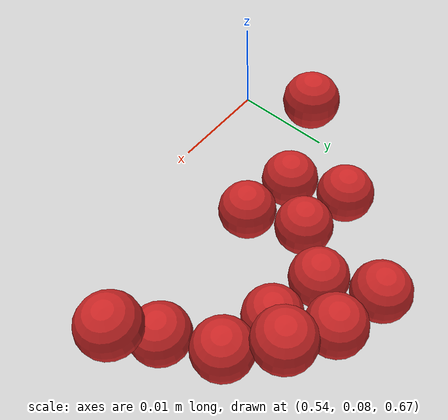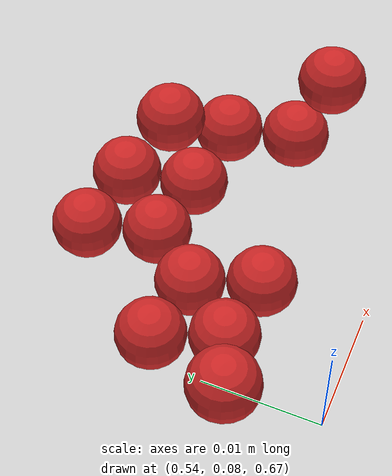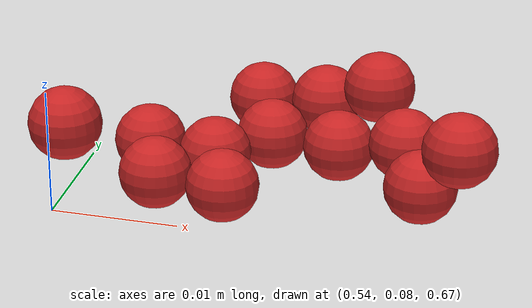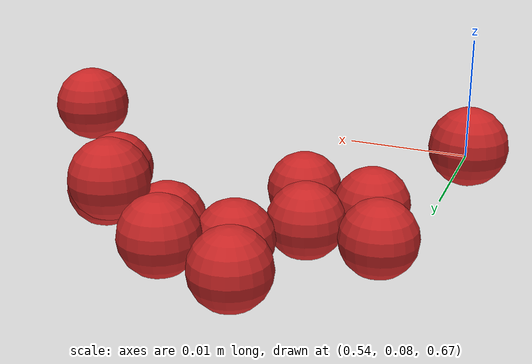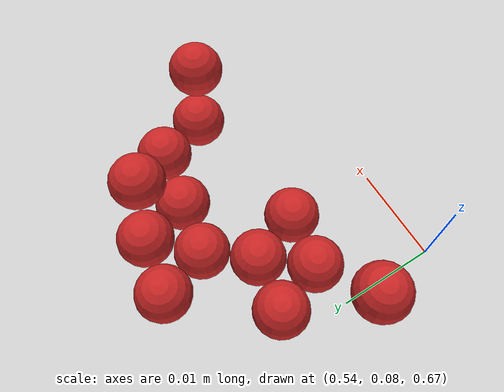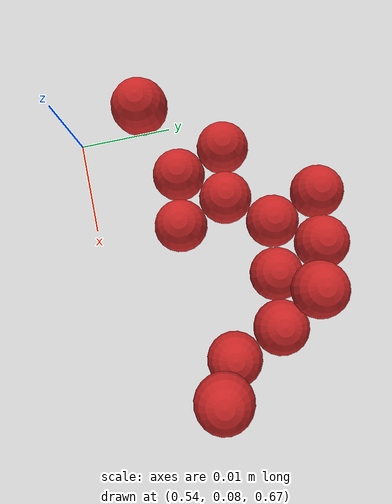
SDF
<sdf version="1.4">
 <world name="default">
  <model name="ground_plane">
   <static>1</static>
   <link name="link">
    <collision name="collision">
     <geometry><plane><normal>0 0 1</normal><size>100 100</size></plane></geometry>
     <surface><friction><ode><mu>100</mu><mu2>50</mu2></ode></friction></surface>
    </collision>
    <visual name="visual">
     <cast_shadows>0</cast_shadows>
     <geometry><plane><normal>0 0 1</normal><size>100 100</size></plane></geometry>
     <material>
      <script><uri>file://media/materials/scripts/gazebo.material</uri><name>Gazebo/Grey</name></script>
     </material>
    </visual>
    <velocity_decay><linear>0</linear><angular>0</angular></velocity_decay>
   </link>
  </model>
  <model name="sphere11">
   <pose>0.017049 0.010197 -0.02053 -0.000122 0.000524 4.7e-05</pose>
   <link name="link">
    <pose>0.552545 0.079517 0.694885 0 -0 0</pose>
    <inertial>
     <mass>1e-08</mass>
     <inertia><ixx>4e-08</ixx><ixy>0</ixy><ixz>0</ixz><iyy>4e-08</iyy><iyz>0</iyz><izz>4e-08</izz></inertia>
    </inertial>
    <collision name="collision">
     <surface>
      <bounce><restitution_coefficient>0.5</restitution_coefficient><threshold>0</threshold></bounce>
      <contact><ode><kp>1e+08</kp><kd>1</kd></ode></contact>
      <friction><ode><mu>1e-06</mu><mu2>1e-06</mu2></ode></friction>
     </surface>
     <geometry><sphere><radius>0.003</radius></sphere></geometry>
    </collision>
    <visual name="visual">
     <geometry><sphere><radius>0.003</radius></sphere></geometry>
     <material>
      <script><uri>file://media/materials/scripts/gazebo.material</uri><name>Gazebo/Red</name></script>
     </material>
    </visual>
    <velocity_decay><linear>0</linear><angular>0</angular></velocity_decay>
   </link>
   <static>0</static>
  </model>
  <model name="sphere14">
   <pose>0.010312 0.018721 -0.024799 0.000367 -0.000589 -0.000438</pose>
   <link name="link">
    <pose>0.546545 0.085517 0.694885 0 -0 0</pose>
    <inertial>
     <mass>1e-08</mass>
     <inertia><ixx>4e-08</ixx><ixy>0</ixy><ixz>0</ixz><iyy>4e-08</iyy><iyz>0</iyz><izz>4e-08</izz></inertia>
    </inertial>
    <collision name="collision">
     <surface>
      <bounce><restitution_coefficient>0.5</restitution_coefficient><threshold>0</threshold></bounce>
      <contact><ode><kp>1e+08</kp><kd>1</kd></ode></contact>
      <friction><ode><mu>1e-06</mu><mu2>1e-06</mu2></ode></friction>
     </surface>
     <geometry><sphere><radius>0.003</radius></sphere></geometry>
    </collision>
    <visual name="visual">
     <geometry><sphere><radius>0.003</radius></sphere></geometry>
     <material>
      <script><uri>file://media/materials/scripts/gazebo.material</uri><name>Gazebo/Red</name></script>
     </material>
    </visual>
    <velocity_decay><linear>0</linear><angular>0</angular></velocity_decay>
   </link>
   <static>0</static>
  </model>
  <model name="sphere15">
   <pose>0.008519 0.015651 -0.021432 -0.000885 0.000506 -0.000228</pose>
   <link name="link">
    <pose>0.552545 0.085517 0.694885 0 -0 0</pose>
    <inertial>
     <mass>1e-08</mass>
     <inertia><ixx>4e-08</ixx><ixy>0</ixy><ixz>0</ixz><iyy>4e-08</iyy><iyz>0</iyz><izz>4e-08</izz></inertia>
    </inertial>
    <collision name="collision">
     <surface>
      <bounce><restitution_coefficient>0.5</restitution_coefficient><threshold>0</threshold></bounce>
      <contact><ode><kp>1e+08</kp><kd>1</kd></ode></contact>
      <friction><ode><mu>1e-06</mu><mu2>1e-06</mu2></ode></friction>
     </surface>
     <geometry><sphere><radius>0.003</radius></sphere></geometry>
    </collision>
    <visual name="visual">
     <geometry><sphere><radius>0.003</radius></sphere></geometry>
     <material>
      <script><uri>file://media/materials/scripts/gazebo.material</uri><name>Gazebo/Red</name></script>
     </material>
    </visual>
    <velocity_decay><linear>0</linear><angular>0</angular></velocity_decay>
   </link>
   <static>0</static>
  </model>
  <model name="sphere41">
   <pose>0.008118 0.01523 -0.037732 7.8e-05 0.000454 0</pose>
   <link name="link">
    <pose>0.540545 0.079517 0.706885 0 -0 0</pose>
    <inertial>
     <mass>1e-08</mass>
     <inertia><ixx>4e-08</ixx><ixy>0</ixy><ixz>0</ixz><iyy>4e-08</iyy><iyz>0</iyz><izz>4e-08</izz></inertia>
    </inertial>
    <collision name="collision">
     <surface>
      <bounce><restitution_coefficient>0.5</restitution_coefficient><threshold>0</threshold></bounce>
      <contact><ode><kp>1e+08</kp><kd>1</kd></ode></contact>
      <friction><ode><mu>1e-06</mu><mu2>1e-06</mu2></ode></friction>
     </surface>
     <geometry><sphere><radius>0.003</radius></sphere></geometry>
    </collision>
    <visual name="visual">
     <geometry><sphere><radius>0.003</radius></sphere></geometry>
     <material>
      <script><uri>file://media/materials/scripts/gazebo.material</uri><name>Gazebo/Red</name></script>
     </material>
    </visual>
    <velocity_decay><linear>0</linear><angular>0</angular></velocity_decay>
   </link>
   <static>0</static>
  </model>
  <model name="sphere47">
   <pose>0.011517 0.011318 -0.036294 -0.000169 0.000636 0.000693</pose>
   <link name="link">
    <pose>0.552545 0.085517 0.706885 0 -0 0</pose>
    <inertial>
     <mass>1e-08</mass>
     <inertia><ixx>4e-08</ixx><ixy>0</ixy><ixz>0</ixz><iyy>4e-08</iyy><iyz>0</iyz><izz>4e-08</izz></inertia>
    </inertial>
    <collision name="collision">
     <surface>
      <bounce><restitution_coefficient>0.5</restitution_coefficient><threshold>0</threshold></bounce>
      <contact><ode><kp>1e+08</kp><kd>1</kd></ode></contact>
      <friction><ode><mu>1e-06</mu><mu2>1e-06</mu2></ode></friction>
     </surface>
     <geometry><sphere><radius>0.003</radius></sphere></geometry>
    </collision>
    <visual name="visual">
     <geometry><sphere><radius>0.003</radius></sphere></geometry>
     <material>
      <script><uri>file://media/materials/scripts/gazebo.material</uri><name>Gazebo/Red</name></script>
     </material>
    </visual>
    <velocity_decay><linear>0</linear><angular>0</angular></velocity_decay>
   </link>
   <static>0</static>
  </model>
  <model name="sphere59">
   <pose>0.013589 0.011903 -0.042971 -0.000489 0.000824 7.1e-05</pose>
   <link name="link">
    <pose>0.552545 0.079517 0.712885 0 -0 0</pose>
    <inertial>
     <mass>1e-08</mass>
     <inertia><ixx>4e-08</ixx><ixy>0</ixy><ixz>0</ixz><iyy>4e-08</iyy><iyz>0</iyz><izz>4e-08</izz></inertia>
    </inertial>
    <collision name="collision">
     <surface>
      <bounce><restitution_coefficient>0.5</restitution_coefficient><threshold>0</threshold></bounce>
      <contact><ode><kp>1e+08</kp><kd>1</kd></ode></contact>
      <friction><ode><mu>1e-06</mu><mu2>1e-06</mu2></ode></friction>
     </surface>
     <geometry><sphere><radius>0.003</radius></sphere></geometry>
    </collision>
    <visual name="visual">
     <geometry><sphere><radius>0.003</radius></sphere></geometry>
     <material>
      <script><uri>file://media/materials/scripts/gazebo.material</uri><name>Gazebo/Red</name></script>
     </material>
    </visual>
    <velocity_decay><linear>0</linear><angular>0</angular></velocity_decay>
   </link>
   <static>0</static>
  </model>
  <model name="sphere62">
   <pose>0.003986 0.019132 -0.043205 -0.000272 0.000173 7.8e-05</pose>
   <link name="link">
    <pose>0.546545 0.085517 0.712885 0 -0 0</pose>
    <inertial>
     <mass>1e-08</mass>
     <inertia><ixx>4e-08</ixx><ixy>0</ixy><ixz>0</ixz><iyy>4e-08</iyy><iyz>0</iyz><izz>4e-08</izz></inertia>
    </inertial>
    <collision name="collision">
     <surface>
      <bounce><restitution_coefficient>0.5</restitution_coefficient><threshold>0</threshold></bounce>
      <contact><ode><kp>1e+08</kp><kd>1</kd></ode></contact>
      <friction><ode><mu>1e-06</mu><mu2>1e-06</mu2></ode></friction>
     </surface>
     <geometry><sphere><radius>0.003</radius></sphere></geometry>
    </collision>
    <visual name="visual">
     <geometry><sphere><radius>0.003</radius></sphere></geometry>
     <material>
      <script><uri>file://media/materials/scripts/gazebo.material</uri><name>Gazebo/Red</name></script>
     </material>
    </visual>
    <velocity_decay><linear>0</linear><angular>0</angular></velocity_decay>
   </link>
   <static>0</static>
  </model>
  <model name="sphere63">
   <pose>0.006445 0.012714 -0.044208 -0.000224 -0.000418 -3.2e-05</pose>
   <link name="link">
    <pose>0.552545 0.085517 0.712885 0 -0 0</pose>
    <inertial>
     <mass>1e-08</mass>
     <inertia><ixx>4e-08</ixx><ixy>0</ixy><ixz>0</ixz><iyy>4e-08</iyy><iyz>0</iyz><izz>4e-08</izz></inertia>
    </inertial>
    <collision name="collision">
     <surface>
      <bounce><restitution_coefficient>0.5</restitution_coefficient><threshold>0</threshold></bounce>
      <contact><ode><kp>1e+08</kp><kd>1</kd></ode></contact>
      <friction><ode><mu>1e-06</mu><mu2>1e-06</mu2></ode></friction>
     </surface>
     <geometry><sphere><radius>0.003</radius></sphere></geometry>
    </collision>
    <visual name="visual">
     <geometry><sphere><radius>0.003</radius></sphere></geometry>
     <material>
      <script><uri>file://media/materials/scripts/gazebo.material</uri><name>Gazebo/Red</name></script>
     </material>
    </visual>
    <velocity_decay><linear>0</linear><angular>0</angular></velocity_decay>
   </link>
   <static>0</static>
  </model>
  <model name="sphere73">
   <pose>0.004494 0.010476 -0.049859 -7e-05 0.00021 -1.65436e-24</pose>
   <link name="link">
    <pose>0.540545 0.079517 0.718885 0 -0 0</pose>
    <inertial>
     <mass>1e-08</mass>
     <inertia><ixx>4e-08</ixx><ixy>0</ixy><ixz>0</ixz><iyy>4e-08</iyy><iyz>0</iyz><izz>4e-08</izz></inertia>
    </inertial>
    <collision name="collision">
     <surface>
      <bounce><restitution_coefficient>0.5</restitution_coefficient><threshold>0</threshold></bounce>
      <contact><ode><kp>1e+08</kp><kd>1</kd></ode></contact>
      <friction><ode><mu>1e-06</mu><mu2>1e-06</mu2></ode></friction>
     </surface>
     <geometry><sphere><radius>0.003</radius></sphere></geometry>
    </collision>
    <visual name="visual">
     <geometry><sphere><radius>0.003</radius></sphere></geometry>
     <material>
      <script><uri>file://media/materials/scripts/gazebo.material</uri><name>Gazebo/Red</name></script>
     </material>
    </visual>
    <velocity_decay><linear>0</linear><angular>0</angular></velocity_decay>
   </link>
   <static>0</static>
  </model>
  <model name="sphere74">
   <pose>0.004634 0.009494 -0.049976 -9.9e-05 -9.3e-05 1.65436e-24</pose>
   <link name="link">
    <pose>0.546545 0.079517 0.718885 0 -0 0</pose>
    <inertial>
     <mass>1e-08</mass>
     <inertia><ixx>4e-08</ixx><ixy>0</ixy><ixz>0</ixz><iyy>4e-08</iyy><iyz>0</iyz><izz>4e-08</izz></inertia>
    </inertial>
    <collision name="collision">
     <surface>
      <bounce><restitution_coefficient>0.5</restitution_coefficient><threshold>0</threshold></bounce>
      <contact><ode><kp>1e+08</kp><kd>1</kd></ode></contact>
      <friction><ode><mu>1e-06</mu><mu2>1e-06</mu2></ode></friction>
     </surface>
     <geometry><sphere><radius>0.003</radius></sphere></geometry>
    </collision>
    <visual name="visual">
     <geometry><sphere><radius>0.003</radius></sphere></geometry>
     <material>
      <script><uri>file://media/materials/scripts/gazebo.material</uri><name>Gazebo/Red</name></script>
     </material>
    </visual>
    <velocity_decay><linear>0</linear><angular>0</angular></velocity_decay>
   </link>
   <static>0</static>
  </model>
  <model name="sphere77">
   <pose>0.002185 0.010048 -0.049686 -0.000124 0.00047 0</pose>
   <link name="link">
    <pose>0.540545 0.085517 0.718885 0 -0 0</pose>
    <inertial>
     <mass>1e-08</mass>
     <inertia><ixx>4e-08</ixx><ixy>0</ixy><ixz>0</ixz><iyy>4e-08</iyy><iyz>0</iyz><izz>4e-08</izz></inertia>
    </inertial>
    <collision name="collision">
     <surface>
      <bounce><restitution_coefficient>0.5</restitution_coefficient><threshold>0</threshold></bounce>
      <contact><ode><kp>1e+08</kp><kd>1</kd></ode></contact>
      <friction><ode><mu>1e-06</mu><mu2>1e-06</mu2></ode></friction>
     </surface>
     <geometry><sphere><radius>0.003</radius></sphere></geometry>
    </collision>
    <visual name="visual">
     <geometry><sphere><radius>0.003</radius></sphere></geometry>
     <material>
      <script><uri>file://media/materials/scripts/gazebo.material</uri><name>Gazebo/Red</name></script>
     </material>
    </visual>
    <velocity_decay><linear>0</linear><angular>0</angular></velocity_decay>
   </link>
   <static>0</static>
  </model>
  <model name="sphere88">
   <pose>0.004032 0.008021 -0.051107 0 -0 0</pose>
   <link name="link">
    <pose>0.534545 0.079517 0.724885 0 -0 0</pose>
    <inertial>
     <mass>1e-08</mass>
     <inertia><ixx>4e-08</ixx><ixy>0</ixy><ixz>0</ixz><iyy>4e-08</iyy><iyz>0</iyz><izz>4e-08</izz></inertia>
    </inertial>
    <collision name="collision">
     <surface>
      <bounce><restitution_coefficient>0.5</restitution_coefficient><threshold>0</threshold></bounce>
      <contact><ode><kp>1e+08</kp><kd>1</kd></ode></contact>
      <friction><ode><mu>1e-06</mu><mu2>1e-06</mu2></ode></friction>
     </surface>
     <geometry><sphere><radius>0.003</radius></sphere></geometry>
    </collision>
    <visual name="visual">
     <geometry><sphere><radius>0.003</radius></sphere></geometry>
     <material>
      <script><uri>file://media/materials/scripts/gazebo.material</uri><name>Gazebo/Red</name></script>
     </material>
    </visual>
    <velocity_decay><linear>0</linear><angular>0</angular></velocity_decay>
   </link>
   <static>0</static>
  </model>
  <model name="sphere94">
   <pose>0.005945 0.01384 -0.055854 5e-05 0.000382 -2e-06</pose>
   <link name="link">
    <pose>0.546545 0.085517 0.724885 0 -0 0</pose>
    <inertial>
     <mass>1e-08</mass>
     <inertia><ixx>4e-08</ixx><ixy>0</ixy><ixz>0</ixz><iyy>4e-08</iyy><iyz>0</iyz><izz>4e-08</izz></inertia>
    </inertial>
    <collision name="collision">
     <surface>
      <bounce><restitution_coefficient>0.5</restitution_coefficient><threshold>0</threshold></bounce>
      <contact><ode><kp>1e+08</kp><kd>1</kd></ode></contact>
      <friction><ode><mu>1e-06</mu><mu2>1e-06</mu2></ode></friction>
     </surface>
     <geometry><sphere><radius>0.003</radius></sphere></geometry>
    </collision>
    <visual name="visual">
     <geometry><sphere><radius>0.003</radius></sphere></geometry>
     <material>
      <script><uri>file://media/materials/scripts/gazebo.material</uri><name>Gazebo/Red</name></script>
     </material>
    </visual>
    <velocity_decay><linear>0</linear><angular>0</angular></velocity_decay>
   </link>
   <static>0</static>
  </model>
 </world>
</sdf>
